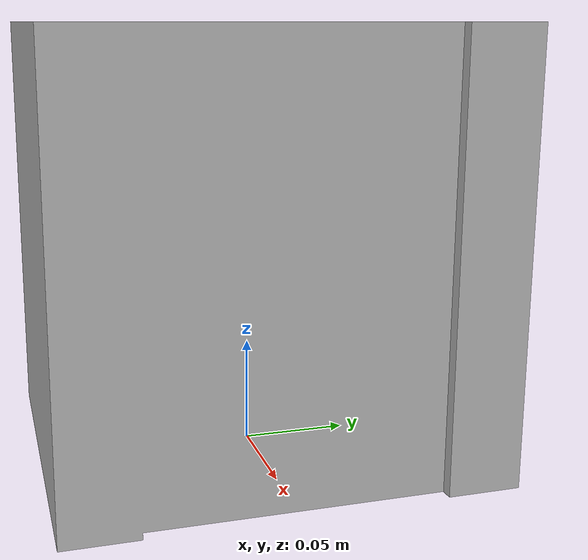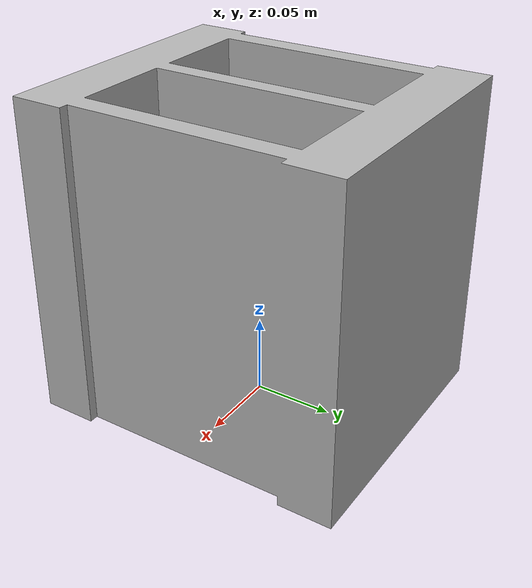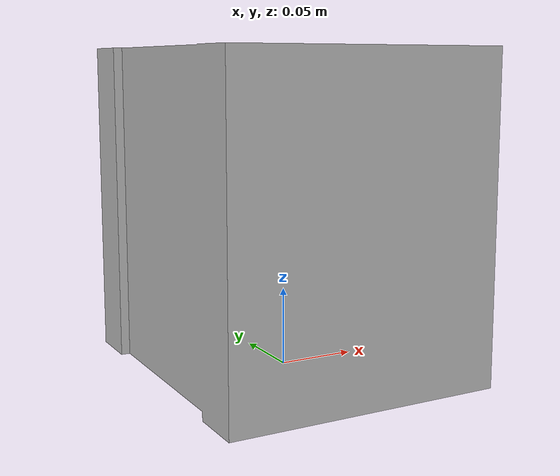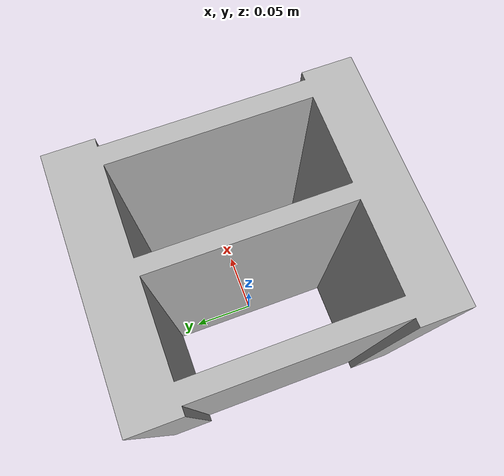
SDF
<?xml version="1.0" ?>
<sdf version="1.4">
  <model name="cinder_block">
    <link name="link">
      <inertial>
        <pose>0 0 0.1016  0 0 0</pose>
        <!-- volume about 0.0085 m^3, density 2000 kg/m^3 -->
        <mass>50</mass>
        <!-- approximate as uniform box 0.37 x 0.17 x 0.20 m -->
        <inertia>
          <ixx>0.028705</ixx>
          <ixy>0.0000</ixy><iyy>0.073708</iyy>
          <ixz>0.0000</ixz><iyz>0.0000</iyz><izz>0.06908</izz>
        </inertia>
      </inertial>
      <visual name="visual">
        <geometry>
          <mesh>
            <uri>model://cinder_block/meshes/cinder_block.dae</uri>
            <scale>0.4 1 1</scale>
          </mesh>
        </geometry>
      </visual>

    </link>
  </model>
</sdf>
